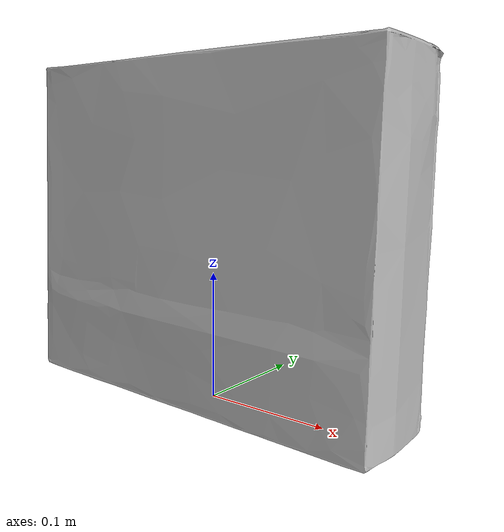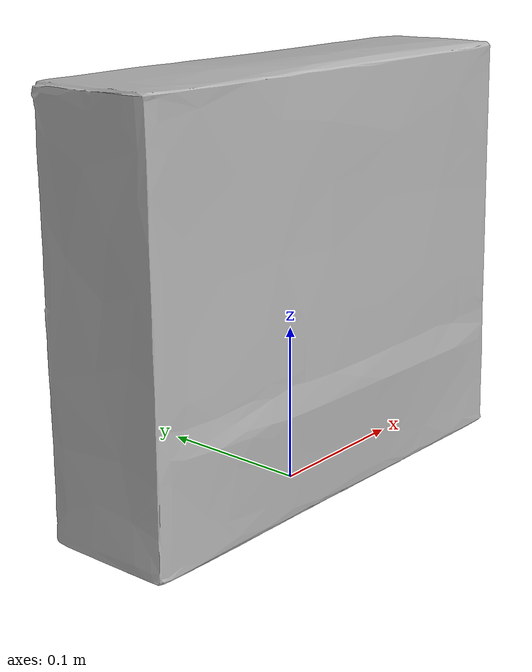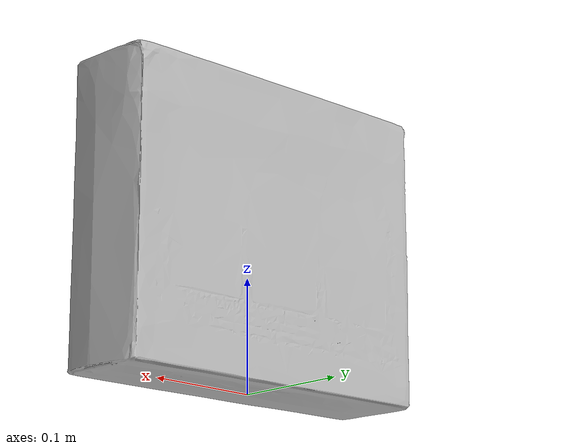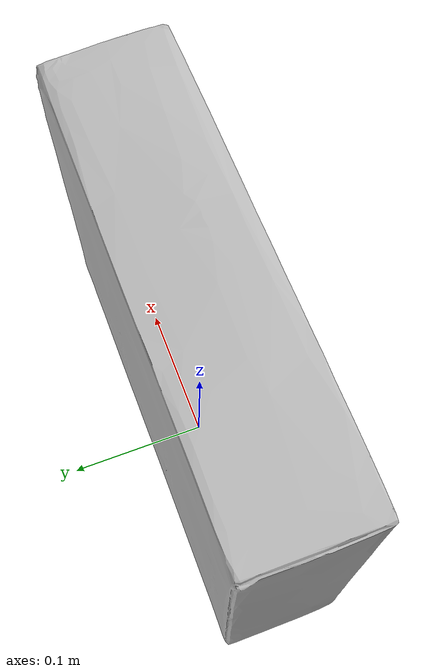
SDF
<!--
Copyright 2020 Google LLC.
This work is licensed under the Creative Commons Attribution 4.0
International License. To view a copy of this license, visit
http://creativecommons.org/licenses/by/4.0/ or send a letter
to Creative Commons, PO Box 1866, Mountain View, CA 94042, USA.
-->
<?xml version="1.0" ?>
<sdf version="1.6">
  <model name="Tetris_Link_Game">
    <link name="link_0">
      <visual name="visual">
        <geometry>
          <mesh>
            <uri>meshes/model.obj</uri>
          </mesh>
        </geometry>
      </visual>
      <collision name="collision_0">
        <geometry>
          <mesh>
            <uri>meshes/model.obj</uri>
          </mesh>
        </geometry>
      </collision>
    </link>
  </model>
</sdf>
